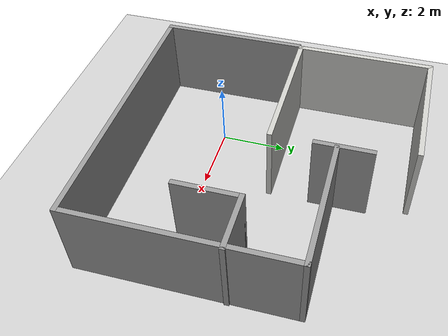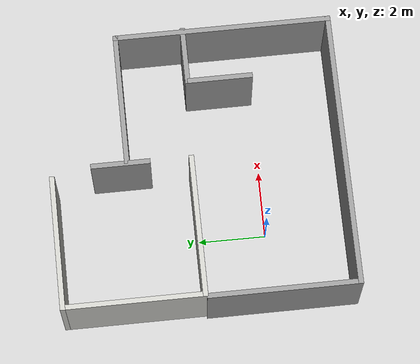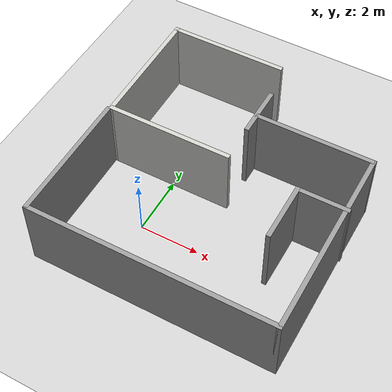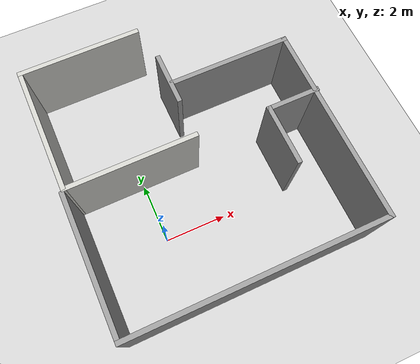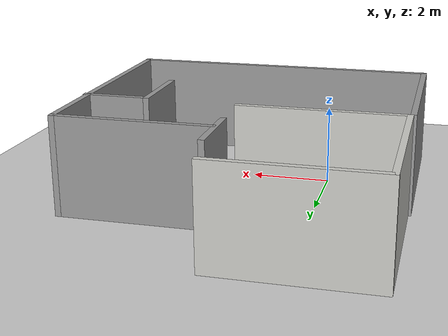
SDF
<sdf version="1.7">
 <world name="default">
  <light name="sun" type="directional">
   <pose>0 0 10 0 -0 0</pose>
   <diffuse>0.8 0.8 0.8 1</diffuse>
   <specular>0.2 0.2 0.2 1</specular>
   <attenuation>
    <range>1000</range>
    <constant>0.9</constant>
    <linear>0.01</linear>
    <quadratic>0.001</quadratic>
   </attenuation>
   <direction>-0.5 0.1 -0.9</direction>
   <spot><inner_angle>0</inner_angle><outer_angle>0</outer_angle><falloff>0</falloff></spot>
  </light>
  <model name="ground_plane">
   <static>1</static>
   <link name="link">
    <collision name="collision">
     <geometry><plane><normal>0 0 1</normal><size>100 100</size></plane></geometry>
     <surface>
      <contact><collide_bitmask>65535</collide_bitmask></contact>
      <friction><ode><mu>100</mu><mu2>50</mu2></ode></friction>
     </surface>
    </collision>
    <visual name="visual">
     <cast_shadows>0</cast_shadows>
     <geometry><plane><normal>0 0 1</normal><size>100 100</size></plane></geometry>
     <material>
      <script><uri>file://media/materials/scripts/gazebo.material</uri><name>Gazebo/Grey</name></script>
     </material>
    </visual>
   </link>
  </model>
  <gravity>0 0 -9.8</gravity>
  <magnetic_field>6e-06 2.3e-05 -4.2e-05</magnetic_field>
  <atmosphere type="adiabatic"/>
  <physics type="ode">
   <max_step_size>0.001</max_step_size>
   <real_time_factor>1</real_time_factor>
   <real_time_update_rate>1000</real_time_update_rate>
  </physics>
  <scene><ambient>0.4 0.4 0.4 1</ambient><background>0.7 0.7 0.7 1</background><shadows>1</shadows></scene>
  <spherical_coordinates>
   <surface_model>EARTH_WGS84</surface_model>
   <latitude_deg>0</latitude_deg>
   <longitude_deg>0</longitude_deg>
   <elevation>0</elevation>
   <heading_deg>0</heading_deg>
  </spherical_coordinates>
  <model name="house1">
   <pose>1.81126 1.84897 0 0 0 -3.13569</pose>
   <link name="Wall_0">
    <collision name="Wall_0_Collision">
     <geometry><box><size>4.25 0.15 2.5</size></box></geometry>
     <pose>0 0 1.25 0 -0 0</pose>
    </collision>
    <visual name="Wall_0_Visual">
     <pose>0 0 1.25 0 -0 0</pose>
     <geometry><box><size>4.25 0.15 2.5</size></box></geometry>
     <material>
      <script><uri>file://media/materials/scripts/gazebo.material</uri><name>Gazebo/CeilingTiled</name></script>
      <ambient>0.435294 0.796078 0.67451 1</ambient>
     </material>
     <meta><layer>0</layer></meta>
    </visual>
    <pose>1.95244 -0.181472 0 0 -0 0</pose>
   </link>
   <link name="Wall_1">
    <collision name="Wall_1_Collision">
     <geometry><box><size>4.25 0.15 2.5</size></box></geometry>
     <pose>0 0 1.25 0 -0 0</pose>
    </collision>
    <visual name="Wall_1_Visual">
     <pose>0 0 1.25 0 -0 0</pose>
     <geometry><box><size>4.25 0.15 2.5</size></box></geometry>
     <material>
      <script><uri>file://media/materials/scripts/gazebo.material</uri><name>Gazebo/CeilingTiled</name></script>
      <ambient>0.435294 0.796078 0.67451 1</ambient>
     </material>
     <meta><layer>0</layer></meta>
    </visual>
    <pose>4.00244 -2.23147 0 0 -0 -1.5708</pose>
   </link>
   <link name="Wall_11">
    <collision name="Wall_11_Collision">
     <geometry><box><size>1.75 0.15 2.5</size></box></geometry>
     <pose>0 0 1.25 0 -0 0</pose>
    </collision>
    <visual name="Wall_11_Visual">
     <pose>0 0 1.25 0 -0 0</pose>
     <geometry><box><size>1.75 0.15 2.5</size></box></geometry>
     <material>
      <script><uri>file://media/materials/scripts/gazebo.material</uri><name>Gazebo/Grey</name></script>
      <ambient>1 1 1 1</ambient>
     </material>
     <meta><layer>0</layer></meta>
    </visual>
    <pose>-3.27172 -0.060973 0 0 -0 0</pose>
   </link>
   <link name="Wall_12">
    <collision name="Wall_12_Collision">
     <geometry><box><size>2 0.15 2.5</size></box></geometry>
     <pose>0 0 1.25 0 -0 0</pose>
    </collision>
    <visual name="Wall_12_Visual">
     <pose>0 0 1.25 0 -0 0</pose>
     <geometry><box><size>2 0.15 2.5</size></box></geometry>
     <material>
      <script><uri>file://media/materials/scripts/gazebo.material</uri><name>Gazebo/Grey</name></script>
      <ambient>1 1 1 1</ambient>
     </material>
     <meta><layer>0</layer></meta>
    </visual>
    <pose>-2.47172 0.864027 0 0 -0 1.5708</pose>
   </link>
   <link name="Wall_2">
    <collision name="Wall_2_Collision">
     <geometry><box><size>4 0.15 2.5</size></box></geometry>
     <pose>0 0 1.25 0 -0 0</pose>
    </collision>
    <visual name="Wall_2_Visual">
     <pose>0 0 1.25 0 -0 0</pose>
     <geometry><box><size>4 0.15 2.5</size></box></geometry>
     <material>
      <script><uri>file://media/materials/scripts/gazebo.material</uri><name>Gazebo/CeilingTiled</name></script>
      <ambient>0.435294 0.796078 0.67451 1</ambient>
     </material>
     <meta><layer>0</layer></meta>
    </visual>
    <pose>2.07744 -4.28147 0 0 -0 3.14159</pose>
   </link>
   <link name="Wall_4">
    <collision name="Wall_4_Collision">
     <geometry><box><size>1.75 0.15 2.5</size></box></geometry>
     <pose>0 0 1.25 0 -0 0</pose>
    </collision>
    <visual name="Wall_4_Visual">
     <pose>0 0 1.25 0 -0 0</pose>
     <geometry><box><size>1.75 0.15 2.5</size></box></geometry>
     <material>
      <script><uri>file://media/materials/scripts/gazebo.material</uri><name>Gazebo/Grey</name></script>
      <ambient>1 1 1 1</ambient>
     </material>
     <meta><layer>0</layer></meta>
    </visual>
    <pose>-0.117445 -2.26018 0 0 -0 -1.5708</pose>
   </link>
   <link name="Wall_6">
    <collision name="Wall_6_Collision">
     <geometry><box><size>4 0.15 2.5</size></box></geometry>
     <pose>0 0 1.25 0 -0 0</pose>
    </collision>
    <visual name="Wall_6_Visual">
     <pose>0 0 1.25 0 -0 0</pose>
     <geometry><box><size>4 0.15 2.5</size></box></geometry>
     <material>
      <script><uri>file://media/materials/scripts/gazebo.material</uri><name>Gazebo/Grey</name></script>
      <ambient>1 1 1 1</ambient>
     </material>
     <meta><layer>0</layer></meta>
    </visual>
    <pose>-2.10328 -2.06853 0 0 -0 3.14159</pose>
   </link>
   <link name="Wall_7">
    <collision name="Wall_7_Collision">
     <geometry><box><size>6.5 0.15 2.5</size></box></geometry>
     <pose>0 0 1.25 0 -0 0</pose>
    </collision>
    <visual name="Wall_7_Visual">
     <pose>0 0 1.25 0 -0 0</pose>
     <geometry><box><size>6.5 0.15 2.5</size></box></geometry>
     <material>
      <script><uri>file://media/materials/scripts/gazebo.material</uri><name>Gazebo/Grey</name></script>
      <ambient>1 1 1 1</ambient>
     </material>
     <meta><layer>0</layer></meta>
    </visual>
    <pose>-4.02828 1.10647 0 0 -0 1.5708</pose>
   </link>
   <link name="Wall_8">
    <collision name="Wall_8_Collision">
     <geometry><box><size>8.25 0.15 2.5</size></box></geometry>
     <pose>0 0 1.25 0 -0 0</pose>
    </collision>
    <visual name="Wall_8_Visual">
     <pose>0 0 1.25 0 -0 0</pose>
     <geometry><box><size>8.25 0.15 2.5</size></box></geometry>
     <material>
      <script><uri>file://media/materials/scripts/gazebo.material</uri><name>Gazebo/Grey</name></script>
      <ambient>1 1 1 1</ambient>
     </material>
     <meta><layer>0</layer></meta>
    </visual>
    <pose>0.02172 4.28147 0 0 -0 0</pose>
   </link>
   <link name="Wall_9">
    <collision name="Wall_9_Collision">
     <geometry><box><size>4.5 0.15 2.5</size></box></geometry>
     <pose>0 0 1.25 0 -0 0</pose>
    </collision>
    <visual name="Wall_9_Visual">
     <pose>0 0 1.25 0 -0 0</pose>
     <geometry><box><size>4.5 0.15 2.5</size></box></geometry>
     <material>
      <script><uri>file://media/materials/scripts/gazebo.material</uri><name>Gazebo/Grey</name></script>
      <ambient>1 1 1 1</ambient>
     </material>
     <meta><layer>0</layer></meta>
    </visual>
    <pose>4.07172 2.10647 0 0 -0 -1.5708</pose>
   </link>
   <static>1</static>
  </model>
 </world>
</sdf>
